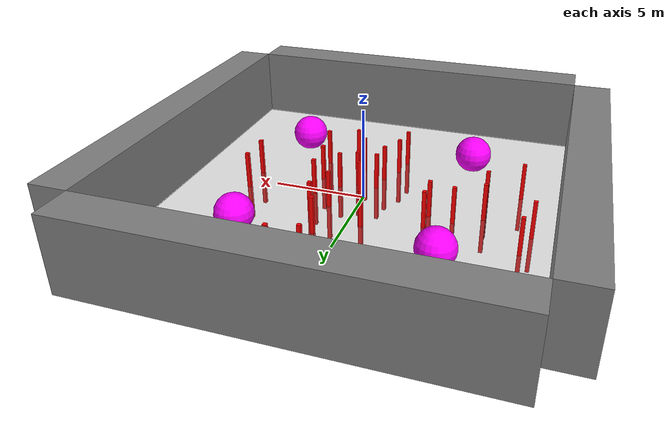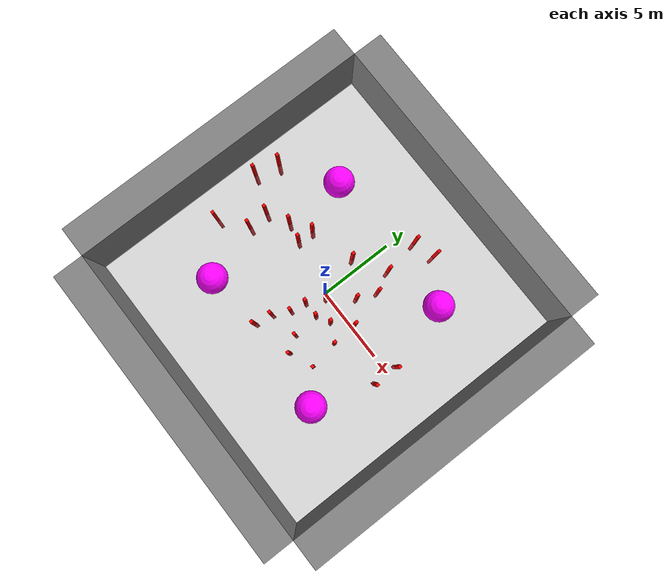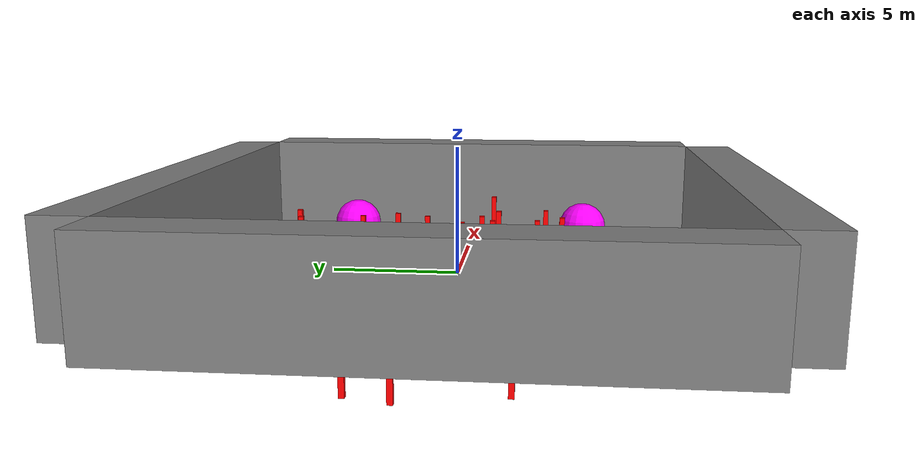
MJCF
<mujoco model="unnamed_model">
  <default>
    <default class="/"/>
    <default class="border/"/>
    <default class="border_1/"/>
    <default class="border_2/"/>
    <default class="border_3/"/>
    <default class="ball/"/>
    <default class="ball_1/"/>
    <default class="tree/"/>
    <default class="area1/"/>
    <default class="area1/ball/"/>
    <default class="area1/ball_1/"/>
    <default class="area1/tree/"/>
    <default class="area1/tree_1/"/>
    <default class="area1/tree_2/"/>
    <default class="area1/tree_3/"/>
    <default class="area1/tree_4/"/>
    <default class="area1/tree_5/"/>
    <default class="area1/tree_6/"/>
    <default class="area1/tree_7/"/>
    <default class="area1/tree_8/"/>
    <default class="area1/tree_9/"/>
    <default class="area1/stone/"/>
    <default class="area1/stone_1/"/>
    <default class="area1/stone_2/"/>
    <default class="area1/stone_3/"/>
    <default class="area1/stone_4/"/>
    <default class="area1/stone_5/"/>
    <default class="area1/stone_6/"/>
    <default class="area1/stone_7/"/>
    <default class="area1/stone_8/"/>
    <default class="area1/stone_9/"/>
    <default class="area1/apple/"/>
    <default class="area1/apple_1/"/>
    <default class="area1/apple_2/"/>
    <default class="area1/apple_3/"/>
    <default class="area1/apple_4/"/>
    <default class="area1/apple_5/"/>
    <default class="area1/apple_6/"/>
  </default>
  <worldbody>
    <geom name="base_plane" class="/" type="plane" size="10 10 0.10000000000000001"/>
    <body name="border/">
      <body name="border/border" pos="0 11 2">
        <geom name="border//unnamed_geom_0" class="border/" type="box" size="10 1 2" rgba="0.5 0.5 0.5 1"/>
      </body>
    </body>
    <body name="border_1/">
      <body name="border_1/border" pos="0 -11 2">
        <geom name="border_1//unnamed_geom_0" class="border_1/" type="box" size="10 1 2" rgba="0.5 0.5 0.5 1"/>
      </body>
    </body>
    <body name="border_2/">
      <body name="border_2/border" pos="11 0 2">
        <geom name="border_2//unnamed_geom_0" class="border_2/" type="box" size="1 10 2" rgba="0.5 0.5 0.5 1"/>
      </body>
    </body>
    <body name="border_3/">
      <body name="border_3/border" pos="-11 0 2">
        <geom name="border_3//unnamed_geom_0" class="border_3/" type="box" size="1 10 2" rgba="0.5 0.5 0.5 1"/>
      </body>
    </body>
    <body name="ball/">
      <body name="ball/ball" pos="5 5 1">
        <geom name="ball//unnamed_geom_0" class="ball/" type="sphere" size="1" rgba="1 0 1 1"/>
      </body>
    </body>
    <body name="ball_1/">
      <body name="ball_1/ball" pos="-5 5 1">
        <geom name="ball_1//unnamed_geom_0" class="ball_1/" type="sphere" size="1" rgba="1 0 1 1"/>
      </body>
    </body>
    <body name="tree/">
      <body name="tree/tree" pos="-0.47489682029738395 -2.3845714090963841 0">
        <geom name="tree//unnamed_geom_0" class="tree/" type="box" size="0.10000000000000001 0.10000000000000001 2" rgba="1 0 0 1"/>
      </body>
    </body>
    <body name="area1/">
      <body name="area1/ball/">
        <body name="area1/ball/ball" pos="-5 -5 1">
          <geom name="area1/ball//unnamed_geom_0" class="area1/ball/" type="sphere" size="1" rgba="1 0 1 1"/>
        </body>
      </body>
      <body name="area1/ball_1/">
        <body name="area1/ball_1/ball" pos="5 -5 1">
          <geom name="area1/ball_1//unnamed_geom_0" class="area1/ball_1/" type="sphere" size="1" rgba="1 0 1 1"/>
        </body>
      </body>
      <body name="area1/tree/">
        <body name="area1/tree/tree" pos="0.90193128790254706 -3.0930442209538862 0">
          <geom name="area1/tree//unnamed_geom_0" class="area1/tree/" type="box" size="0.10000000000000001 0.10000000000000001 2" rgba="1 0 0 1"/>
        </body>
      </body>
      <body name="area1/tree_1/">
        <body name="area1/tree_1/tree" pos="0.23423654368166974 -0.13581117751666347 0">
          <geom name="area1/tree_1//unnamed_geom_0" class="area1/tree_1/" type="box" size="0.10000000000000001 0.10000000000000001 2" rgba="1 0 0 1"/>
        </body>
      </body>
      <body name="area1/tree_2/">
        <body name="area1/tree_2/tree" pos="3.1472629820005928 -3.4152635477779327 0">
          <geom name="area1/tree_2//unnamed_geom_0" class="area1/tree_2/" type="box" size="0.10000000000000001 0.10000000000000001 2" rgba="1 0 0 1"/>
        </body>
      </body>
      <body name="area1/tree_3/">
        <body name="area1/tree_3/tree" pos="1.611557056543621 -0.83122063887670905 0">
          <geom name="area1/tree_3//unnamed_geom_0" class="area1/tree_3/" type="box" size="0.10000000000000001 0.10000000000000001 2" rgba="1 0 0 1"/>
        </body>
      </body>
      <body name="area1/tree_4/">
        <body name="area1/tree_4/tree" pos="1.5652332363523094 -4.0782631547291999 0">
          <geom name="area1/tree_4//unnamed_geom_0" class="area1/tree_4/" type="box" size="0.10000000000000001 0.10000000000000001 2" rgba="1 0 0 1"/>
        </body>
      </body>
      <body name="area1/tree_5/">
        <body name="area1/tree_5/tree" pos="-6.4571498576345014 0.24166756964724492 0">
          <geom name="area1/tree_5//unnamed_geom_0" class="area1/tree_5/" type="box" size="0.10000000000000001 0.10000000000000001 2" rgba="1 0 0 1"/>
        </body>
      </body>
      <body name="area1/tree_6/">
        <body name="area1/tree_6/tree" pos="6.3666416880518248 0.69042408279652956 0">
          <geom name="area1/tree_6//unnamed_geom_0" class="area1/tree_6/" type="box" size="0.10000000000000001 0.10000000000000001 2" rgba="1 0 0 1"/>
        </body>
      </body>
      <body name="area1/tree_7/">
        <body name="area1/tree_7/tree" pos="-3.7203726990532755 1.8579572490161269 0">
          <geom name="area1/tree_7//unnamed_geom_0" class="area1/tree_7/" type="box" size="0.10000000000000001 0.10000000000000001 2" rgba="1 0 0 1"/>
        </body>
      </body>
      <body name="area1/tree_8/">
        <body name="area1/tree_8/tree" pos="1.3137296823730975 4.0348172777581111 0">
          <geom name="area1/tree_8//unnamed_geom_0" class="area1/tree_8/" type="box" size="0.10000000000000001 0.10000000000000001 2" rgba="1 0 0 1"/>
        </body>
      </body>
      <body name="area1/tree_9/">
        <body name="area1/tree_9/tree" pos="6.3858139531686673 -1.0281701182544463 0">
          <geom name="area1/tree_9//unnamed_geom_0" class="area1/tree_9/" type="box" size="0.10000000000000001 0.10000000000000001 2" rgba="1 0 0 1"/>
        </body>
      </body>
      <body name="area1/stone/">
        <body name="area1/stone/stone" pos="2.8120043366340925 -1.4509700264401879 0">
          <geom name="area1/stone//unnamed_geom_0" class="area1/stone/" type="box" size="0.10000000000000001 0.10000000000000001 2" rgba="1 0 0 1"/>
        </body>
      </body>
      <body name="area1/stone_1/">
        <body name="area1/stone_1/stone" pos="1.4426230079770976 1.3822119283667311 0">
          <geom name="area1/stone_1//unnamed_geom_0" class="area1/stone_1/" type="box" size="0.10000000000000001 0.10000000000000001 2" rgba="1 0 0 1"/>
        </body>
      </body>
      <body name="area1/stone_2/">
        <body name="area1/stone_2/stone" pos="-8.940150477590846 1.2308855185157299 0">
          <geom name="area1/stone_2//unnamed_geom_0" class="area1/stone_2/" type="box" size="0.10000000000000001 0.10000000000000001 2" rgba="1 0 0 1"/>
        </body>
      </body>
      <body name="area1/stone_3/">
        <body name="area1/stone_3/stone" pos="0.73027063917455004 -1.3191017961913414 0">
          <geom name="area1/stone_3//unnamed_geom_0" class="area1/stone_3/" type="box" size="0.10000000000000001 0.10000000000000001 2" rgba="1 0 0 1"/>
        </body>
      </body>
      <body name="area1/stone_4/">
        <body name="area1/stone_4/stone" pos="-6.3635195722857558 -1.1592524229755972 0">
          <geom name="area1/stone_4//unnamed_geom_0" class="area1/stone_4/" type="box" size="0.10000000000000001 0.10000000000000001 2" rgba="1 0 0 1"/>
        </body>
      </body>
      <body name="area1/stone_5/">
        <body name="area1/stone_5/stone" pos="2.6770956088533544 0.29589081232855424 0">
          <geom name="area1/stone_5//unnamed_geom_0" class="area1/stone_5/" type="box" size="0.10000000000000001 0.10000000000000001 2" rgba="1 0 0 1"/>
        </body>
      </body>
      <body name="area1/stone_6/">
        <body name="area1/stone_6/stone" pos="-0.74002197552073445 2.7529530844668608 0">
          <geom name="area1/stone_6//unnamed_geom_0" class="area1/stone_6/" type="box" size="0.10000000000000001 0.10000000000000001 2" rgba="1 0 0 1"/>
        </body>
      </body>
      <body name="area1/stone_7/">
        <body name="area1/stone_7/stone" pos="-3.7479429058807372 0.75750759256236666 0">
          <geom name="area1/stone_7//unnamed_geom_0" class="area1/stone_7/" type="box" size="0.10000000000000001 0.10000000000000001 2" rgba="1 0 0 1"/>
        </body>
      </body>
      <body name="area1/stone_8/">
        <body name="area1/stone_8/stone" pos="-5.03017966553195 1.0233812378128455 0">
          <geom name="area1/stone_8//unnamed_geom_0" class="area1/stone_8/" type="box" size="0.10000000000000001 0.10000000000000001 2" rgba="1 0 0 1"/>
        </body>
      </body>
      <body name="area1/stone_9/">
        <body name="area1/stone_9/stone" pos="0.90071729855932881 6.5215652698531814 0">
          <geom name="area1/stone_9//unnamed_geom_0" class="area1/stone_9/" type="box" size="0.10000000000000001 0.10000000000000001 2" rgba="1 0 0 1"/>
        </body>
      </body>
      <body name="area1/apple/">
        <body name="area1/apple/apple" pos="-8.5348016259301538 2.8513238299192216 0">
          <geom name="area1/apple//unnamed_geom_0" class="area1/apple/" type="box" size="0.10000000000000001 0.10000000000000001 2" rgba="1 0 0 1"/>
        </body>
      </body>
      <body name="area1/apple_1/">
        <body name="area1/apple_1/apple" pos="2.3645672718792583 6.9457747434092374 0">
          <geom name="area1/apple_1//unnamed_geom_0" class="area1/apple_1/" type="box" size="0.10000000000000001 0.10000000000000001 2" rgba="1 0 0 1"/>
        </body>
      </body>
      <body name="area1/apple_2/">
        <body name="area1/apple_2/apple" pos="-8.0586123145594879 -2.4997350394928683 0">
          <geom name="area1/apple_2//unnamed_geom_0" class="area1/apple_2/" type="box" size="0.10000000000000001 0.10000000000000001 2" rgba="1 0 0 1"/>
        </body>
      </body>
      <body name="area1/apple_3/">
        <body name="area1/apple_3/apple" pos="-1.0422514643138197 -3.4762832856390431 0">
          <geom name="area1/apple_3//unnamed_geom_0" class="area1/apple_3/" type="box" size="0.10000000000000001 0.10000000000000001 2" rgba="1 0 0 1"/>
        </body>
      </body>
      <body name="area1/apple_4/">
        <body name="area1/apple_4/apple" pos="1.9609644022329287 2.6868376281726438 0">
          <geom name="area1/apple_4//unnamed_geom_0" class="area1/apple_4/" type="box" size="0.10000000000000001 0.10000000000000001 2" rgba="1 0 0 1"/>
        </body>
      </body>
      <body name="area1/apple_5/">
        <body name="area1/apple_5/apple" pos="-0.33195074888003445 -1.3173747693777895 0">
          <geom name="area1/apple_5//unnamed_geom_0" class="area1/apple_5/" type="box" size="0.10000000000000001 0.10000000000000001 2" rgba="1 0 0 1"/>
        </body>
      </body>
      <body name="area1/apple_6/">
        <body name="area1/apple_6/apple" pos="-1.2389925850390269 -4.6774386334960614 0">
          <geom name="area1/apple_6//unnamed_geom_0" class="area1/apple_6/" type="box" size="0.10000000000000001 0.10000000000000001 2" rgba="1 0 0 1"/>
        </body>
      </body>
    </body>
  </worldbody>
</mujoco>
